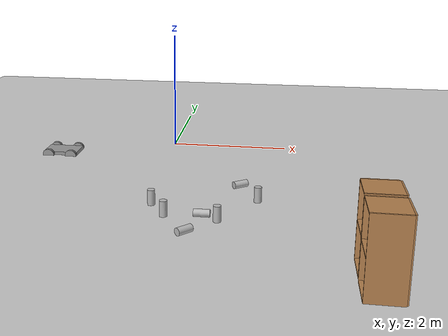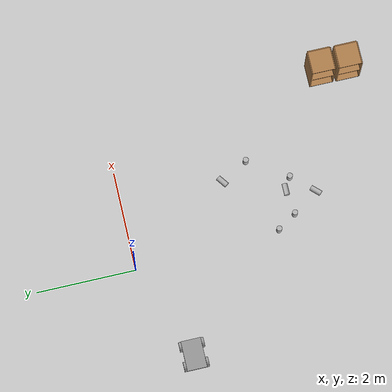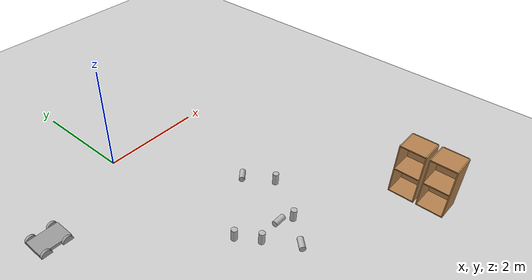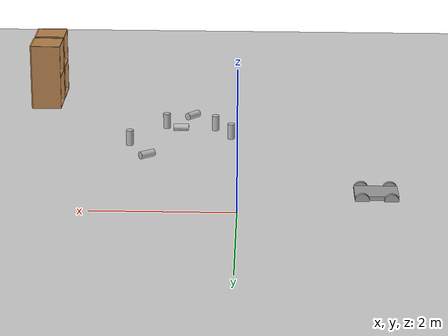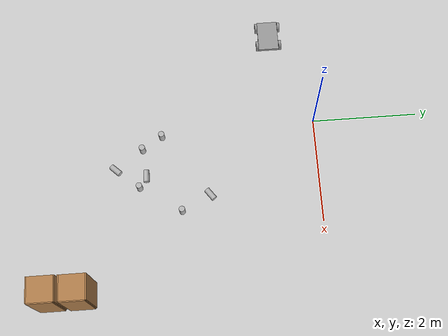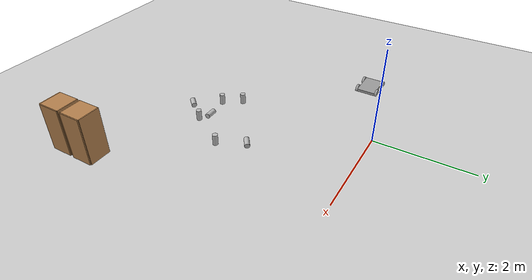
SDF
<sdf version="1.6">
 <world name="default">
  <model name="ground_plane">
   <static>1</static>
   <link name="link">
    <collision name="collision">
     <geometry><plane><normal>0 0 1</normal><size>100 100</size></plane></geometry>
     <surface>
      <contact><collide_bitmask>65535</collide_bitmask></contact>
      <friction><ode><mu>100</mu><mu2>50</mu2></ode></friction>
     </surface>
    </collision>
    <visual name="visual">
     <cast_shadows>0</cast_shadows>
     <geometry><plane><normal>0 0 1</normal><size>100 100</size></plane></geometry>
     <material>
      <script><uri>file://media/materials/scripts/gazebo.material</uri><name>Gazebo/Grey</name></script>
     </material>
    </visual>
   </link>
  </model>
  <model name="beer">
   <link name="link">
    <pose>0 0 0.115 0 -0 0</pose>
    <inertial>
     <mass>0.39</mass>
     <inertia><ixx>0.00058</ixx><ixy>0</ixy><ixz>0</ixz><iyy>0.00058</iyy><iyz>0</iyz><izz>0.00019</izz></inertia>
    </inertial>
    <collision name="collision">
     <geometry><cylinder><radius>0.055</radius><length>0.23</length></cylinder></geometry>
    </collision>
    <visual name="visual">
     <geometry><cylinder><radius>0.055</radius><length>0.23</length></cylinder></geometry>
     <material>
      <script>
       <uri>model://beer/materials/scripts</uri>
       <uri>model://beer/materials/textures</uri>
       <name>Beer/Diffuse</name>
      </script>
     </material>
    </visual>
   </link>
   <pose>0.387083 -3.31909 -2e-06 1e-06 -0 -9e-06</pose>
  </model>
  <model name="beer_0">
   <link name="link">
    <pose>0 0 0.115 0 -0 0</pose>
    <inertial>
     <mass>0.39</mass>
     <inertia><ixx>0.00058</ixx><ixy>0</ixy><ixz>0</ixz><iyy>0.00058</iyy><iyz>0</iyz><izz>0.00019</izz></inertia>
    </inertial>
    <collision name="collision">
     <geometry><cylinder><radius>0.055</radius><length>0.23</length></cylinder></geometry>
    </collision>
    <visual name="visual">
     <geometry><cylinder><radius>0.055</radius><length>0.23</length></cylinder></geometry>
     <material>
      <script>
       <uri>model://beer/materials/scripts</uri>
       <uri>model://beer/materials/textures</uri>
       <name>Beer/Diffuse</name>
      </script>
     </material>
    </visual>
   </link>
   <pose>0.143631 -2.94232 0.000168 -0.001005 -0.002922 0.873759</pose>
  </model>
  <model name="beer_1">
   <link name="link">
    <pose>0 0 0.115 0 -0 0</pose>
    <inertial>
     <mass>0.39</mass>
     <inertia><ixx>0.00058</ixx><ixy>0</ixy><ixz>0</ixz><iyy>0.00058</iyy><iyz>0</iyz><izz>0.00019</izz></inertia>
    </inertial>
    <collision name="collision">
     <geometry><cylinder><radius>0.055</radius><length>0.23</length></cylinder></geometry>
    </collision>
    <visual name="visual">
     <geometry><cylinder><radius>0.055</radius><length>0.23</length></cylinder></geometry>
     <material>
      <script>
       <uri>model://beer/materials/scripts</uri>
       <uri>model://beer/materials/textures</uri>
       <name>Beer/Diffuse</name>
      </script>
     </material>
    </visual>
   </link>
   <pose>0.833846 -3.75693 0.055 1.57115 1.45347 -0.757065</pose>
  </model>
  <model name="beer_2">
   <link name="link">
    <pose>0 0 0.115 0 -0 0</pose>
    <inertial>
     <mass>0.39</mass>
     <inertia><ixx>0.00058</ixx><ixy>0</ixy><ixz>0</ixz><iyy>0.00058</iyy><iyz>0</iyz><izz>0.00019</izz></inertia>
    </inertial>
    <collision name="collision">
     <geometry><cylinder><radius>0.055</radius><length>0.23</length></cylinder></geometry>
    </collision>
    <visual name="visual">
     <geometry><cylinder><radius>0.055</radius><length>0.23</length></cylinder></geometry>
     <material>
      <script>
       <uri>model://beer/materials/scripts</uri>
       <uri>model://beer/materials/textures</uri>
       <name>Beer/Diffuse</name>
      </script>
     </material>
    </visual>
   </link>
   <pose>0.796057 -3.26252 0.054918 0.025857 1.57044 0.025857</pose>
  </model>
  <model name="beer_3">
   <link name="link">
    <pose>0 0 0.115 0 -0 0</pose>
    <inertial>
     <mass>0.39</mass>
     <inertia><ixx>0.00058</ixx><ixy>0</ixy><ixz>0</ixz><iyy>0.00058</iyy><iyz>0</iyz><izz>0.00019</izz></inertia>
    </inertial>
    <collision name="collision">
     <geometry><cylinder><radius>0.055</radius><length>0.23</length></cylinder></geometry>
    </collision>
    <visual name="visual">
     <geometry><cylinder><radius>0.055</radius><length>0.23</length></cylinder></geometry>
     <material>
      <script>
       <uri>model://beer/materials/scripts</uri>
       <uri>model://beer/materials/textures</uri>
       <name>Beer/Diffuse</name>
      </script>
     </material>
    </visual>
   </link>
   <pose>1.64254 -2.61385 -2e-06 1e-06 -0 -9e-06</pose>
  </model>
  <model name="beer_4">
   <link name="link">
    <pose>0 0 0.115 0 -0 0</pose>
    <inertial>
     <mass>0.39</mass>
     <inertia><ixx>0.00058</ixx><ixy>0</ixy><ixz>0</ixz><iyy>0.00058</iyy><iyz>0</iyz><izz>0.00019</izz></inertia>
    </inertial>
    <collision name="collision">
     <geometry><cylinder><radius>0.055</radius><length>0.23</length></cylinder></geometry>
    </collision>
    <visual name="visual">
     <geometry><cylinder><radius>0.055</radius><length>0.23</length></cylinder></geometry>
     <material>
      <script>
       <uri>model://beer/materials/scripts</uri>
       <uri>model://beer/materials/textures</uri>
       <name>Beer/Diffuse</name>
      </script>
     </material>
    </visual>
   </link>
   <pose>1.25822 -2.141 0.055 -1.57084 -0.483463 -0.936469</pose>
  </model>
  <model name="beer_5">
   <link name="link">
    <pose>0 0 0.115 0 -0 0</pose>
    <inertial>
     <mass>0.39</mass>
     <inertia><ixx>0.00058</ixx><ixy>0</ixy><ixz>0</ixz><iyy>0.00058</iyy><iyz>0</iyz><izz>0.00019</izz></inertia>
    </inertial>
    <collision name="collision">
     <geometry><cylinder><radius>0.055</radius><length>0.23</length></cylinder></geometry>
    </collision>
    <visual name="visual">
     <geometry><cylinder><radius>0.055</radius><length>0.23</length></cylinder></geometry>
     <material>
      <script>
       <uri>model://beer/materials/scripts</uri>
       <uri>model://beer/materials/textures</uri>
       <name>Beer/Diffuse</name>
      </script>
     </material>
    </visual>
   </link>
   <pose>1.13479 -3.39296 -2e-06 1e-06 -0 -9e-06</pose>
  </model>
  <model name="cabinet">
   <static>1</static>
   <link name="cabinet_bottom_plate">
    <inertial>
     <pose>0 0 -1 0 -0 0</pose>
     <inertia><ixx>2.05</ixx><ixy>0</ixy><ixz>0</ixz><iyy>2.05</iyy><iyz>0</iyz><izz>2.05</izz></inertia>
     <mass>25</mass>
    </inertial>
    <collision name="cabinet_bottom_plate_geom">
     <pose>0 0 0.01 0 -0 0</pose>
     <geometry><box><size>0.45 0.45 0.02</size></box></geometry>
    </collision>
    <visual name="cabinet_bottom_plate_geom_visual">
     <pose>0 0 0.01 0 -0 0</pose>
     <geometry><box><size>0.45 0.45 0.02</size></box></geometry>
     <material>
      <script><uri>file://media/materials/scripts/gazebo.material</uri><name>Gazebo/Wood</name></script>
     </material>
    </visual>
    <collision name="cabinet_bottom_plate_geom_cabinet_back_plate">
     <pose>0.235 0 0.51 0 -0 0</pose>
     <geometry><box><size>0.02 0.45 1.02</size></box></geometry>
    </collision>
    <visual name="cabinet_bottom_plate_geom_cabinet_back_plate_visual">
     <pose>0.235 0 0.51 0 -0 0</pose>
     <geometry><box><size>0.02 0.45 1.02</size></box></geometry>
     <material>
      <script><uri>file://media/materials/scripts/gazebo.material</uri><name>Gazebo/Wood</name></script>
     </material>
    </visual>
    <collision name="cabinet_bottom_plate_geom_cabinet_left_plate">
     <pose>0 0.235 0.51 0 -0 0</pose>
     <geometry><box><size>0.45 0.02 1.02</size></box></geometry>
    </collision>
    <visual name="cabinet_bottom_plate_geom_cabinet_left_plate_visual">
     <pose>0 0.235 0.51 0 -0 0</pose>
     <geometry><box><size>0.45 0.02 1.02</size></box></geometry>
     <material>
      <script><uri>file://media/materials/scripts/gazebo.material</uri><name>Gazebo/Wood</name></script>
     </material>
    </visual>
    <collision name="cabinet_bottom_plate_geom_cabinet_middle_plate">
     <pose>0 0 0.51 0 -0 0</pose>
     <geometry><box><size>0.45 0.45 0.02</size></box></geometry>
    </collision>
    <visual name="cabinet_bottom_plate_geom_cabinet_middle_plate_visual">
     <pose>0 0 0.51 0 -0 0</pose>
     <geometry><box><size>0.45 0.45 0.02</size></box></geometry>
     <material>
      <script><uri>file://media/materials/scripts/gazebo.material</uri><name>Gazebo/Wood</name></script>
     </material>
    </visual>
    <collision name="cabinet_bottom_plate_geom_cabinet_right_plate">
     <pose>0 -0.235 0.51 0 -0 0</pose>
     <geometry><box><size>0.45 0.02 1.02</size></box></geometry>
    </collision>
    <visual name="cabinet_bottom_plate_geom_cabinet_right_plate_visual">
     <pose>0 -0.235 0.51 0 -0 0</pose>
     <geometry><box><size>0.45 0.02 1.02</size></box></geometry>
     <material>
      <script><uri>file://media/materials/scripts/gazebo.material</uri><name>Gazebo/Wood</name></script>
     </material>
    </visual>
    <collision name="cabinet_bottom_plate_geom_cabinet_top_plate">
     <pose>0 0 1.01 0 -0 0</pose>
     <geometry><box><size>0.45 0.45 0.02</size></box></geometry>
    </collision>
    <visual name="cabinet_bottom_plate_geom_cabinet_top_plate_visual">
     <pose>0 0 1.01 0 -0 0</pose>
     <geometry><box><size>0.45 0.45 0.02</size></box></geometry>
     <material>
      <script><uri>file://media/materials/scripts/gazebo.material</uri><name>Gazebo/Wood</name></script>
     </material>
    </visual>
   </link>
   <pose>3.08058 -5.00403 0 0 -0 0</pose>
  </model>
  <model name="cabinet_clone">
   <static>1</static>
   <link name="cabinet_bottom_plate">
    <inertial>
     <pose>0 0 -1 0 -0 0</pose>
     <inertia><ixx>2.05</ixx><ixy>0</ixy><ixz>0</ixz><iyy>2.05</iyy><iyz>0</iyz><izz>2.05</izz></inertia>
     <mass>25</mass>
    </inertial>
    <collision name="cabinet_bottom_plate_geom">
     <pose>0 0 0.01 0 -0 0</pose>
     <geometry><box><size>0.45 0.45 0.02</size></box></geometry>
    </collision>
    <visual name="cabinet_bottom_plate_geom_visual">
     <pose>0 0 0.01 0 -0 0</pose>
     <geometry><box><size>0.45 0.45 0.02</size></box></geometry>
     <material>
      <script><uri>file://media/materials/scripts/gazebo.material</uri><name>Gazebo/Wood</name></script>
     </material>
    </visual>
    <collision name="cabinet_bottom_plate_geom_cabinet_back_plate">
     <pose>0.235 0 0.51 0 -0 0</pose>
     <geometry><box><size>0.02 0.45 1.02</size></box></geometry>
    </collision>
    <visual name="cabinet_bottom_plate_geom_cabinet_back_plate_visual">
     <pose>0.235 0 0.51 0 -0 0</pose>
     <geometry><box><size>0.02 0.45 1.02</size></box></geometry>
     <material>
      <script><uri>file://media/materials/scripts/gazebo.material</uri><name>Gazebo/Wood</name></script>
     </material>
    </visual>
    <collision name="cabinet_bottom_plate_geom_cabinet_left_plate">
     <pose>0 0.235 0.51 0 -0 0</pose>
     <geometry><box><size>0.45 0.02 1.02</size></box></geometry>
    </collision>
    <visual name="cabinet_bottom_plate_geom_cabinet_left_plate_visual">
     <pose>0 0.235 0.51 0 -0 0</pose>
     <geometry><box><size>0.45 0.02 1.02</size></box></geometry>
     <material>
      <script><uri>file://media/materials/scripts/gazebo.material</uri><name>Gazebo/Wood</name></script>
     </material>
    </visual>
    <collision name="cabinet_bottom_plate_geom_cabinet_middle_plate">
     <pose>0 0 0.51 0 -0 0</pose>
     <geometry><box><size>0.45 0.45 0.02</size></box></geometry>
    </collision>
    <visual name="cabinet_bottom_plate_geom_cabinet_middle_plate_visual">
     <pose>0 0 0.51 0 -0 0</pose>
     <geometry><box><size>0.45 0.45 0.02</size></box></geometry>
     <material>
      <script><uri>file://media/materials/scripts/gazebo.material</uri><name>Gazebo/Wood</name></script>
     </material>
    </visual>
    <collision name="cabinet_bottom_plate_geom_cabinet_right_plate">
     <pose>0 -0.235 0.51 0 -0 0</pose>
     <geometry><box><size>0.45 0.02 1.02</size></box></geometry>
    </collision>
    <visual name="cabinet_bottom_plate_geom_cabinet_right_plate_visual">
     <pose>0 -0.235 0.51 0 -0 0</pose>
     <geometry><box><size>0.45 0.02 1.02</size></box></geometry>
     <material>
      <script><uri>file://media/materials/scripts/gazebo.material</uri><name>Gazebo/Wood</name></script>
     </material>
    </visual>
    <collision name="cabinet_bottom_plate_geom_cabinet_top_plate">
     <pose>0 0 1.01 0 -0 0</pose>
     <geometry><box><size>0.45 0.45 0.02</size></box></geometry>
    </collision>
    <visual name="cabinet_bottom_plate_geom_cabinet_top_plate_visual">
     <pose>0 0 1.01 0 -0 0</pose>
     <geometry><box><size>0.45 0.45 0.02</size></box></geometry>
     <material>
      <script><uri>file://media/materials/scripts/gazebo.material</uri><name>Gazebo/Wood</name></script>
     </material>
    </visual>
   </link>
   <pose>3.08541 -4.46562 0 0 -0 0</pose>
  </model>
  <model name="robot_clone">
   <link name="link_0">
    <inertial>
     <mass>1</mass>
     <inertia>
      <ixx>0.166667</ixx>
      <ixy>0</ixy>
      <ixz>0</ixz>
      <iyy>0.166667</iyy>
      <iyz>0</iyz>
      <izz>0.166667</izz>
     </inertia>
    </inertial>
    <visual name="visual">
     <geometry><box><size>0.6 0.4 0.1</size></box></geometry>
     <material>
      <lighting>1</lighting>
      <script><uri>file://media/materials/scripts/gazebo.material</uri><name>Gazebo/Grey</name></script>
      <shader type="pixel"><normal_map>__default__</normal_map></shader>
      <ambient>0.3 0.3 0.3 1</ambient>
      <diffuse>0.7 0.7 0.7 1</diffuse>
      <specular>0.01 0.01 0.01 1</specular>
      <emissive>0 0 0 1</emissive>
     </material>
    </visual>
    <collision name="collision">
     <geometry><box><size>0.6 0.4 0.1</size></box></geometry>
     <surface>
      <friction>
       <ode><mu>1</mu><mu2>1</mu2><fdir1>0 0 0</fdir1><slip1>0</slip1><slip2>0</slip2></ode>
       <torsional>
        <coefficient>1</coefficient>
        <patch_radius>0</patch_radius>
        <surface_radius>0</surface_radius>
        <use_patch_radius>1</use_patch_radius>
        <ode><slip>0</slip></ode>
       </torsional>
      </friction>
      <bounce><restitution_coefficient>0</restitution_coefficient><threshold>1e+06</threshold></bounce>
      <contact>
       <collide_without_contact>0</collide_without_contact>
       <collide_without_contact_bitmask>1</collide_without_contact_bitmask>
       <collide_bitmask>1</collide_bitmask>
       <ode>
        <soft_cfm>0</soft_cfm>
        <soft_erp>0.2</soft_erp>
        <kp>1e+13</kp>
        <kd>1</kd>
        <max_vel>0.01</max_vel>
        <min_depth>0</min_depth>
       </ode>
       <bullet>
        <split_impulse>1</split_impulse>
        <split_impulse_penetration_threshold>-0.01</split_impulse_penetration_threshold>
        <soft_cfm>0</soft_cfm>
        <soft_erp>0.2</soft_erp>
        <kp>1e+13</kp>
        <kd>1</kd>
       </bullet>
      </contact>
     </surface>
    </collision>
   </link>
   <link name="link_1_clone">
    <pose>-0.2 0.22501 0 0 -0 0</pose>
    <inertial>
     <mass>1</mass>
     <inertia><ixx>0.145833</ixx><ixy>0</ixy><ixz>0</ixz><iyy>0.145833</iyy><iyz>0</iyz><izz>0.125</izz></inertia>
    </inertial>
    <visual name="visual">
     <pose>0 0 0 1.5707 -0 0</pose>
     <geometry><cylinder><radius>0.1</radius><length>0.05</length></cylinder></geometry>
     <material>
      <lighting>1</lighting>
      <script><uri>file://media/materials/scripts/gazebo.material</uri><name>Gazebo/Grey</name></script>
      <shader type="pixel"><normal_map>__default__</normal_map></shader>
      <ambient>0.3 0.3 0.3 1</ambient>
      <diffuse>0.7 0.7 0.7 1</diffuse>
      <specular>0.01 0.01 0.01 1</specular>
      <emissive>0 0 0 1</emissive>
     </material>
    </visual>
    <collision name="collision">
     <pose>0 0 0 1.5707 -0 0</pose>
     <geometry><cylinder><radius>0.1</radius><length>0.05</length></cylinder></geometry>
     <surface>
      <friction>
       <ode><mu>1</mu><mu2>1</mu2><fdir1>0 0 0</fdir1><slip1>0</slip1><slip2>0</slip2></ode>
       <torsional>
        <coefficient>1</coefficient>
        <patch_radius>0</patch_radius>
        <surface_radius>0</surface_radius>
        <use_patch_radius>1</use_patch_radius>
        <ode><slip>0</slip></ode>
       </torsional>
      </friction>
      <bounce><restitution_coefficient>0</restitution_coefficient><threshold>1e+06</threshold></bounce>
      <contact>
       <collide_without_contact>0</collide_without_contact>
       <collide_without_contact_bitmask>1</collide_without_contact_bitmask>
       <collide_bitmask>1</collide_bitmask>
       <ode>
        <soft_cfm>0</soft_cfm>
        <soft_erp>0.2</soft_erp>
        <kp>1e+13</kp>
        <kd>1</kd>
        <max_vel>0.01</max_vel>
        <min_depth>0</min_depth>
       </ode>
       <bullet>
        <split_impulse>1</split_impulse>
        <split_impulse_penetration_threshold>-0.01</split_impulse_penetration_threshold>
        <soft_cfm>0</soft_cfm>
        <soft_erp>0.2</soft_erp>
        <kp>1e+13</kp>
        <kd>1</kd>
       </bullet>
      </contact>
     </surface>
    </collision>
   </link>
   <link name="link_1_clone_0">
    <pose>0.2 -0.22501 0 0 -0 0</pose>
    <inertial>
     <mass>1</mass>
     <inertia><ixx>0.145833</ixx><ixy>0</ixy><ixz>0</ixz><iyy>0.145833</iyy><iyz>0</iyz><izz>0.125</izz></inertia>
    </inertial>
    <visual name="visual">
     <pose>0 0 0 1.5707 -0 0</pose>
     <geometry><cylinder><radius>0.1</radius><length>0.05</length></cylinder></geometry>
     <material>
      <lighting>1</lighting>
      <script><uri>file://media/materials/scripts/gazebo.material</uri><name>Gazebo/Grey</name></script>
      <shader type="pixel"><normal_map>__default__</normal_map></shader>
      <ambient>0.3 0.3 0.3 1</ambient>
      <diffuse>0.7 0.7 0.7 1</diffuse>
      <specular>0.01 0.01 0.01 1</specular>
      <emissive>0 0 0 1</emissive>
     </material>
    </visual>
    <collision name="collision">
     <pose>0 0 0 1.5707 -0 0</pose>
     <geometry><cylinder><radius>0.1</radius><length>0.05</length></cylinder></geometry>
     <surface>
      <friction>
       <ode><mu>1</mu><mu2>1</mu2><fdir1>0 0 0</fdir1><slip1>0</slip1><slip2>0</slip2></ode>
       <torsional>
        <coefficient>1</coefficient>
        <patch_radius>0</patch_radius>
        <surface_radius>0</surface_radius>
        <use_patch_radius>1</use_patch_radius>
        <ode><slip>0</slip></ode>
       </torsional>
      </friction>
      <bounce><restitution_coefficient>0</restitution_coefficient><threshold>1e+06</threshold></bounce>
      <contact>
       <collide_without_contact>0</collide_without_contact>
       <collide_without_contact_bitmask>1</collide_without_contact_bitmask>
       <collide_bitmask>1</collide_bitmask>
       <ode>
        <soft_cfm>0</soft_cfm>
        <soft_erp>0.2</soft_erp>
        <kp>1e+13</kp>
        <kd>1</kd>
        <max_vel>0.01</max_vel>
        <min_depth>0</min_depth>
       </ode>
       <bullet>
        <split_impulse>1</split_impulse>
        <split_impulse_penetration_threshold>-0.01</split_impulse_penetration_threshold>
        <soft_cfm>0</soft_cfm>
        <soft_erp>0.2</soft_erp>
        <kp>1e+13</kp>
        <kd>1</kd>
       </bullet>
      </contact>
     </surface>
    </collision>
   </link>
   <link name="link_1_clone_1">
    <pose>0.2 0.22501 0 0 -0 0</pose>
    <inertial>
     <mass>1</mass>
     <inertia><ixx>0.145833</ixx><ixy>0</ixy><ixz>0</ixz><iyy>0.145833</iyy><iyz>0</iyz><izz>0.125</izz></inertia>
    </inertial>
    <visual name="visual">
     <pose>0 0 0 1.5707 -0 0</pose>
     <geometry><cylinder><radius>0.1</radius><length>0.05</length></cylinder></geometry>
     <material>
      <lighting>1</lighting>
      <script><uri>file://media/materials/scripts/gazebo.material</uri><name>Gazebo/Grey</name></script>
      <shader type="pixel"><normal_map>__default__</normal_map></shader>
      <ambient>0.3 0.3 0.3 1</ambient>
      <diffuse>0.7 0.7 0.7 1</diffuse>
      <specular>0.01 0.01 0.01 1</specular>
      <emissive>0 0 0 1</emissive>
     </material>
    </visual>
    <collision name="collision">
     <pose>0 0 0 1.5707 -0 0</pose>
     <geometry><cylinder><radius>0.1</radius><length>0.05</length></cylinder></geometry>
     <surface>
      <friction>
       <ode><mu>1</mu><mu2>1</mu2><fdir1>0 0 0</fdir1><slip1>0</slip1><slip2>0</slip2></ode>
       <torsional>
        <coefficient>1</coefficient>
        <patch_radius>0</patch_radius>
        <surface_radius>0</surface_radius>
        <use_patch_radius>1</use_patch_radius>
        <ode><slip>0</slip></ode>
       </torsional>
      </friction>
      <bounce><restitution_coefficient>0</restitution_coefficient><threshold>1e+06</threshold></bounce>
      <contact>
       <collide_without_contact>0</collide_without_contact>
       <collide_without_contact_bitmask>1</collide_without_contact_bitmask>
       <collide_bitmask>1</collide_bitmask>
       <ode>
        <soft_cfm>0</soft_cfm>
        <soft_erp>0.2</soft_erp>
        <kp>1e+13</kp>
        <kd>1</kd>
        <max_vel>0.01</max_vel>
        <min_depth>0</min_depth>
       </ode>
       <bullet>
        <split_impulse>1</split_impulse>
        <split_impulse_penetration_threshold>-0.01</split_impulse_penetration_threshold>
        <soft_cfm>0</soft_cfm>
        <soft_erp>0.2</soft_erp>
        <kp>1e+13</kp>
        <kd>1</kd>
       </bullet>
      </contact>
     </surface>
    </collision>
   </link>
   <link name="link_1_clone_1_clone">
    <pose>-0.2 -0.22501 0 0 -0 0</pose>
    <inertial>
     <mass>1</mass>
     <inertia><ixx>0.145833</ixx><ixy>0</ixy><ixz>0</ixz><iyy>0.145833</iyy><iyz>0</iyz><izz>0.125</izz></inertia>
    </inertial>
    <visual name="visual">
     <pose>0 0 0 1.5707 -0 0</pose>
     <geometry><cylinder><radius>0.1</radius><length>0.05</length></cylinder></geometry>
     <material>
      <lighting>1</lighting>
      <script><uri>file://media/materials/scripts/gazebo.material</uri><name>Gazebo/Grey</name></script>
      <shader type="pixel"><normal_map>__default__</normal_map></shader>
      <ambient>0.3 0.3 0.3 1</ambient>
      <diffuse>0.7 0.7 0.7 1</diffuse>
      <specular>0.01 0.01 0.01 1</specular>
      <emissive>0 0 0 1</emissive>
     </material>
    </visual>
    <collision name="collision">
     <pose>0 0 0 1.5707 -0 0</pose>
     <geometry><cylinder><radius>0.1</radius><length>0.05</length></cylinder></geometry>
     <surface>
      <friction>
       <ode><mu>1</mu><mu2>1</mu2><fdir1>0 0 0</fdir1><slip1>0</slip1><slip2>0</slip2></ode>
       <torsional>
        <coefficient>1</coefficient>
        <patch_radius>0</patch_radius>
        <surface_radius>0</surface_radius>
        <use_patch_radius>1</use_patch_radius>
        <ode><slip>0</slip></ode>
       </torsional>
      </friction>
      <bounce><restitution_coefficient>0</restitution_coefficient><threshold>1e+06</threshold></bounce>
      <contact>
       <collide_without_contact>0</collide_without_contact>
       <collide_without_contact_bitmask>1</collide_without_contact_bitmask>
       <collide_bitmask>1</collide_bitmask>
       <ode>
        <soft_cfm>0</soft_cfm>
        <soft_erp>0.2</soft_erp>
        <kp>1e+13</kp>
        <kd>1</kd>
        <max_vel>0.01</max_vel>
        <min_depth>0</min_depth>
       </ode>
       <bullet>
        <split_impulse>1</split_impulse>
        <split_impulse_penetration_threshold>-0.01</split_impulse_penetration_threshold>
        <soft_cfm>0</soft_cfm>
        <soft_erp>0.2</soft_erp>
        <kp>1e+13</kp>
        <kd>1</kd>
       </bullet>
      </contact>
     </surface>
    </collision>
   </link>
   <joint name="link_0_JOINT_0" type="revolute">
    <parent>link_0</parent>
    <child>link_1_clone_1</child>
    <axis>
     <xyz>0 0 1</xyz>
     <use_parent_model_frame>0</use_parent_model_frame>
     <limit>
      <lower>-1.79769e+308</lower>
      <upper>1.79769e+308</upper>
      <effort>-1</effort>
      <velocity>-1</velocity>
     </limit>
     <dynamics>
      <spring_reference>0</spring_reference>
      <spring_stiffness>0</spring_stiffness>
      <damping>0</damping>
     </dynamics>
    </axis>
    <physics>
     <ode><limit><cfm>0</cfm><erp>0.2</erp></limit><suspension><cfm>0</cfm><erp>0.2</erp></suspension></ode>
    </physics>
   </joint>
   <joint name="link_0_JOINT_1" type="revolute">
    <parent>link_0</parent>
    <child>link_1_clone_0</child>
    <axis>
     <xyz>0 0 1</xyz>
     <use_parent_model_frame>0</use_parent_model_frame>
     <limit>
      <lower>-1.79769e+308</lower>
      <upper>1.79769e+308</upper>
      <effort>-1</effort>
      <velocity>-1</velocity>
     </limit>
     <dynamics>
      <spring_reference>0</spring_reference>
      <spring_stiffness>0</spring_stiffness>
      <damping>0</damping>
      <friction>0</friction>
     </dynamics>
    </axis>
    <physics>
     <ode><limit><cfm>0</cfm><erp>0.2</erp></limit><suspension><cfm>0</cfm><erp>0.2</erp></suspension></ode>
    </physics>
   </joint>
   <joint name="link_0_JOINT_2" type="revolute">
    <parent>link_0</parent>
    <child>link_1_clone</child>
    <axis>
     <xyz>0 0 1</xyz>
     <use_parent_model_frame>0</use_parent_model_frame>
     <limit>
      <lower>-1.79769e+308</lower>
      <upper>1.79769e+308</upper>
      <effort>-1</effort>
      <velocity>-1</velocity>
     </limit>
     <dynamics>
      <spring_reference>0</spring_reference>
      <spring_stiffness>0</spring_stiffness>
      <damping>0</damping>
     </dynamics>
    </axis>
    <physics>
     <ode><limit><cfm>0</cfm><erp>0.2</erp></limit><suspension><cfm>0</cfm><erp>0.2</erp></suspension></ode>
    </physics>
   </joint>
   <joint name="link_0_JOINT_4" type="revolute">
    <parent>link_0</parent>
    <child>link_1_clone_1_clone</child>
    <axis>
     <xyz>0 0 1</xyz>
     <use_parent_model_frame>0</use_parent_model_frame>
     <limit>
      <lower>-1.79769e+308</lower>
      <upper>1.79769e+308</upper>
      <effort>-1</effort>
      <velocity>-1</velocity>
     </limit>
     <dynamics>
      <spring_reference>0</spring_reference>
      <spring_stiffness>0</spring_stiffness>
      <damping>0</damping>
     </dynamics>
    </axis>
    <physics>
     <ode><limit><cfm>0</cfm><erp>0.2</erp></limit><suspension><cfm>0</cfm><erp>0.2</erp></suspension></ode>
    </physics>
   </joint>
   <static>0</static>
   <pose>-1.89669 -0.739088 0 0 -0 0</pose>
  </model>
 </world>
</sdf>
